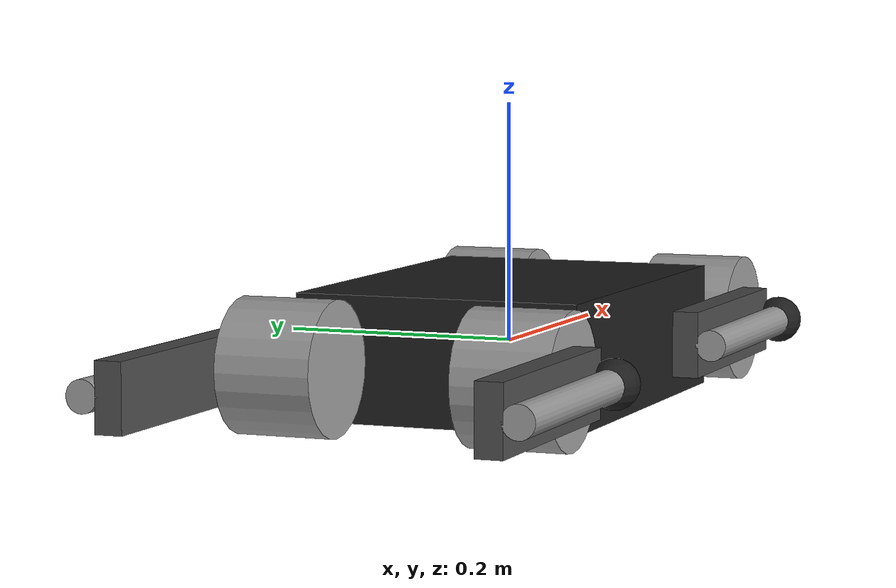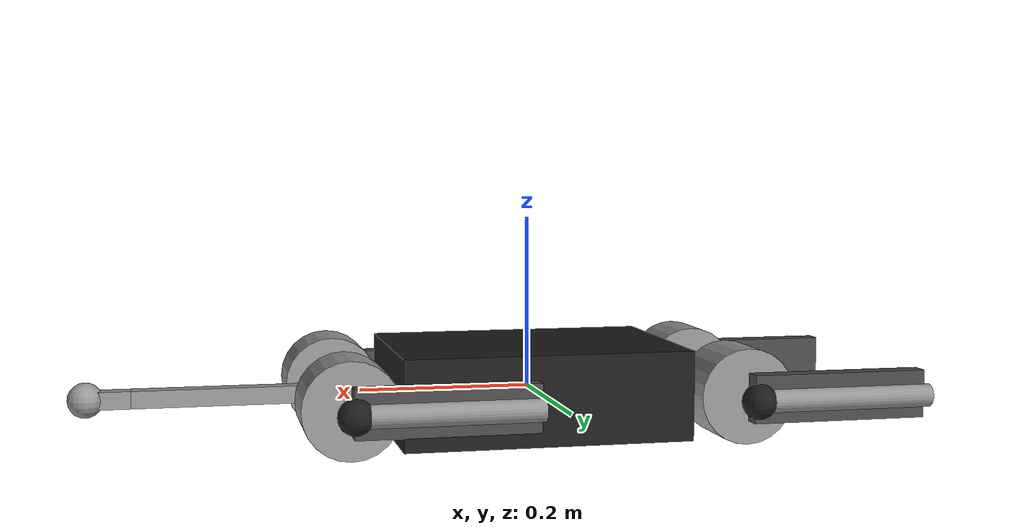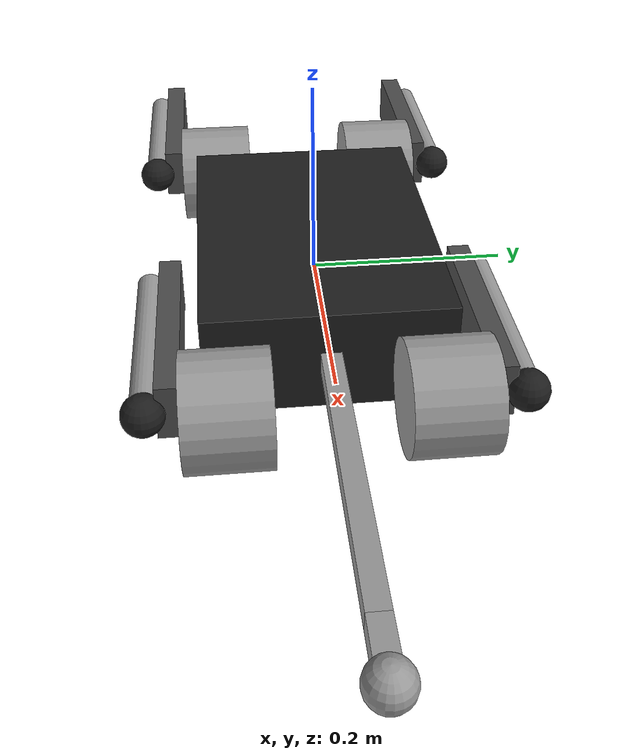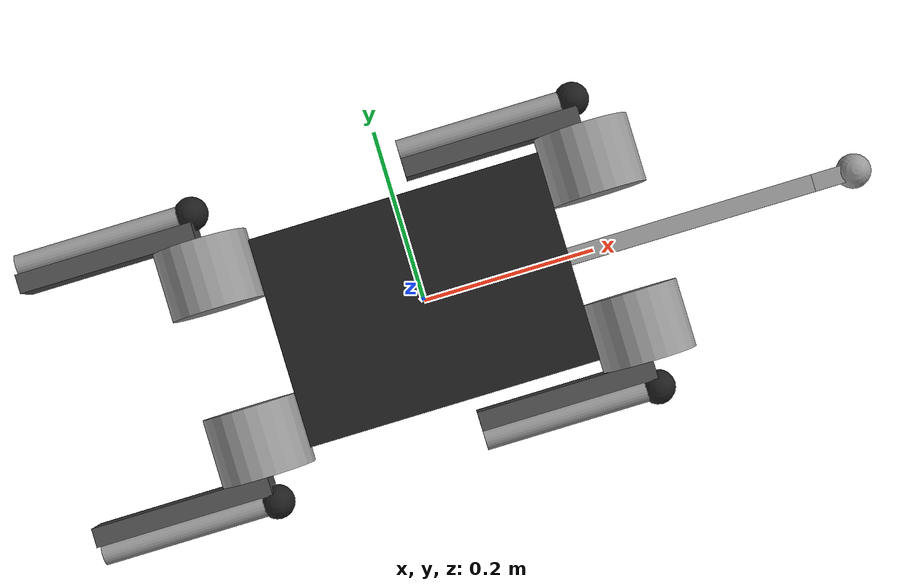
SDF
<?xml version='1.0'?>
<sdf version='1.6'>
  <model name='spirit'>
    <link name='body'>
      <pose frame=''>0 0 0 0 -0 0</pose>
      <inertial>
        <pose frame=''>0 0 0 0 -0 0</pose>
        <mass>5.75</mass>
        <inertia>
          <ixx>0.05</ixx>
          <ixy>0</ixy>
          <ixz>0</ixz>
          <iyy>0.1</iyy>
          <iyz>0</iyz>
          <izz>0.1</izz>
        </inertia>
      </inertial>
      <visual name='body_visual'>
        <pose frame=''>0 0 0 0 -0 0</pose>
        <geometry>
          <box>
            <size>0.335 0.24 0.104</size>
          </box>
        </geometry>
        <material>
          <script>
            <name>Gazebo/Black</name>
            <uri>file://media/materials/scripts/gazebo.material</uri>
          </script>
        </material>
      </visual>
      <gravity>1</gravity>
      <velocity_decay/>
      <self_collide>0</self_collide>
      <enable_wind>0</enable_wind>
      <kinematic>0</kinematic>
    </link>
    <link name='hip2'>
      <pose frame=''>0.2263 -0.07 0 0 -0 0</pose>
      <inertial>
        <pose frame=''>0 -0.028 0 1.5708 -0 0</pose>
        <mass>0.575</mass>
        <inertia>
          <ixx>0.000669635</ixx>
          <ixy>0</ixy>
          <ixz>0</ixz>
          <iyy>0.000669635</iyy>
          <iyz>0</iyz>
          <izz>0.000869688</izz>
        </inertia>
      </inertial>
      <visual name='hip2_visual'>
        <pose frame=''>0 -0.028 0 1.5708 -0 0</pose>
        <geometry>
          <cylinder>
            <length>0.08</length>
            <radius>0.055</radius>
          </cylinder>
        </geometry>
        <material>
          <script>
            <name>Gazebo/Grey</name>
            <uri>file://media/materials/scripts/gazebo.material</uri>
          </script>
        </material>
      </visual>
      <gravity>1</gravity>
      <velocity_decay/>
    </link>
    <joint name='10' type='revolute'>
      <child>hip2</child>
      <parent>body</parent>
      <axis>
        <xyz>1 0 0</xyz>
        <limit>
          <lower>-0.707</lower>
          <upper>0.707</upper>
          <effort>40</effort>
          <velocity>30</velocity>
        </limit>
        <dynamics>
          <damping>0</damping>
          <friction>0</friction>
          <spring_reference>0</spring_reference>
          <spring_stiffness>0</spring_stiffness>
        </dynamics>
        <use_parent_model_frame>0</use_parent_model_frame>
      </axis>
    </joint>
    <link name='upper2'>
      <pose frame=''>0.2263 -0.17098 0 0 -0 0</pose>
      <inertial>
        <pose frame=''>0 0 0 0 -0 0</pose>
        <mass>0.775</mass>
        <inertia>
          <ixx>5e-05</ixx>
          <ixy>0</ixy>
          <ixz>0</ixz>
          <iyy>0.001</iyy>
          <iyz>0</iyz>
          <izz>0.001</izz>
        </inertia>
      </inertial>
      <visual name='upper2_visual'>
        <pose frame=''>-0.103 0.022 0 0 -0 0</pose>
        <geometry>
          <box>
            <size>0.206 0.022 0.055</size>
          </box>
        </geometry>
        <material>
          <script>
            <name>Gazebo/DarkGrey</name>
            <uri>file://media/materials/scripts/gazebo.material</uri>
          </script>
        </material>
      </visual>
      <gravity>1</gravity>
      <velocity_decay/>
    </link>
    <joint name='4' type='revolute'>
      <child>upper2</child>
      <parent>hip2</parent>
      <axis>
        <xyz>0 -1 0</xyz>
        <limit>
          <lower>-6.28319</lower>
          <upper>6.28319</upper>
          <effort>40</effort>
          <velocity>30</velocity>
        </limit>
        <dynamics>
          <damping>0</damping>
          <friction>0</friction>
          <spring_reference>0</spring_reference>
          <spring_stiffness>0</spring_stiffness>
        </dynamics>
        <use_parent_model_frame>0</use_parent_model_frame>
      </axis>
    </joint>
    <link name='lower2'>
      <pose frame=''>0.0203 -0.17098 0 0 -0 0</pose>
      <inertial>
        <pose frame=''>0 0 0 0 -0 0</pose>
        <mass>0.075</mass>
        <inertia>
          <ixx>5e-06</ixx>
          <ixy>0</ixy>
          <ixz>0</ixz>
          <iyy>0.0001</iyy>
          <iyz>0</iyz>
          <izz>0.0001</izz>
        </inertia>
      </inertial>
      <visual name='lower2_visual'>
        <pose frame=''>0.103 0 0 3.14159 1.57079 3.14159</pose>
        <geometry>
          <cylinder>
            <length>0.206</length>
            <radius>0.013</radius>
          </cylinder>
        </geometry>
        <material>
          <script>
            <name>Gazebo/Grey</name>
            <uri>file://media/materials/scripts/gazebo.material</uri>
          </script>
        </material>
      </visual>
      <gravity>1</gravity>
      <velocity_decay/>
    </link>
    <joint name='5' type='revolute'>
      <child>lower2</child>
      <parent>upper2</parent>
      <axis>
        <xyz>0 1 0</xyz>
        <limit>
          <lower>0</lower>
          <upper>3.14159</upper>
          <effort>40</effort>
          <velocity>30</velocity>
        </limit>
        <dynamics>
          <damping>0</damping>
          <friction>0</friction>
          <spring_reference>0</spring_reference>
          <spring_stiffness>0</spring_stiffness>
        </dynamics>
        <use_parent_model_frame>0</use_parent_model_frame>
      </axis>
    </joint>
    <link name='toe2'>
      <pose frame=''>0.2263 -0.17098 -0 0 -0 0</pose>
      <inertial>
        <pose frame=''>0 0 0 0 -0 0</pose>
        <mass>0.015</mass>
        <inertia>
          <ixx>2.5e-05</ixx>
          <ixy>0</ixy>
          <ixz>0</ixz>
          <iyy>2.5e-05</iyy>
          <iyz>0</iyz>
          <izz>2.5e-05</izz>
        </inertia>
      </inertial>
      <sensor name='toe2_contact' type='contact'>
        <plugin name='toe2_plugin' filename='libgazebo_ros_bumper.so'>
          <alwaysOn>1</alwaysOn>
          <updateRate>500</updateRate>
          <bumperTopicName>gazebo/toe2_contact_state</bumperTopicName>
          <frameName>world</frameName>
          <robotNamespace>/</robotNamespace>
        </plugin>
        <contact>
          <collision>toe2_collision</collision>
          <topic>__default_topic__</topic>
        </contact>
        <update_rate>500</update_rate>
      </sensor>
      <gravity>1</gravity>
      <velocity_decay/>
      <self_collide>0</self_collide>
      <enable_wind>0</enable_wind>
      <kinematic>0</kinematic>
      <visual name='toe2_visual'>
        <pose frame=''>0 0 0 0 -0 0</pose>
        <geometry>
          <sphere>
            <radius>0.02</radius>
          </sphere>
        </geometry>
        <material>
          <script>
            <name>Gazebo/Black</name>
            <uri>file://media/materials/scripts/gazebo.material</uri>
          </script>
          <shader type='pixel'/>
        </material>
        <transparency>0</transparency>
        <cast_shadows>1</cast_shadows>
      </visual>
      <collision name='toe2_collision'>
        <laser_retro>0</laser_retro>
        <max_contacts>10</max_contacts>
        <pose frame=''>0 0 0 0 -0 0</pose>
        <geometry>
          <sphere>
            <radius>0.02</radius>
          </sphere>
        </geometry>
        <surface>
          <friction>
            <ode>
              <mu>0.3</mu>
              <mu2>0.3</mu2>
              <fdir1>0 0 0</fdir1>
              <slip1>0</slip1>
              <slip2>0</slip2>
            </ode>
            <torsional>
              <coefficient>1</coefficient>
              <patch_radius>0</patch_radius>
              <surface_radius>0</surface_radius>
              <use_patch_radius>1</use_patch_radius>
              <ode>
                <slip>0</slip>
              </ode>
            </torsional>
          </friction>
          <bounce>
            <restitution_coefficient>0</restitution_coefficient>
            <threshold>1e+06</threshold>
          </bounce>
          <contact>
            <collide_without_contact>0</collide_without_contact>
            <collide_without_contact_bitmask>1</collide_without_contact_bitmask>
            <collide_bitmask>1</collide_bitmask>
            <ode>
              <soft_cfm>0</soft_cfm>
              <soft_erp>0.2</soft_erp>
              <kp>30000</kp>
              <kd>1000</kd>
              <max_vel>0.01</max_vel>
              <min_depth>0</min_depth>
            </ode>
            <bullet>
              <split_impulse>1</split_impulse>
              <split_impulse_penetration_threshold>-0.01</split_impulse_penetration_threshold>
              <soft_cfm>0</soft_cfm>
              <soft_erp>0.2</soft_erp>
              <kp>30000</kp>
              <kd>1000</kd>
            </bullet>
          </contact>
        </surface>
      </collision>
    </link>
    <link name='hip3'>
      <pose frame=''>-0.2263 -0.07 0 0 -0 0</pose>
      <inertial>
        <pose frame=''>0 -0.028 0 1.5708 -0 0</pose>
        <mass>0.575</mass>
        <inertia>
          <ixx>0.000669635</ixx>
          <ixy>0</ixy>
          <ixz>0</ixz>
          <iyy>0.000669635</iyy>
          <iyz>0</iyz>
          <izz>0.000869688</izz>
        </inertia>
      </inertial>
      <visual name='hip3_visual'>
        <pose frame=''>0 -0.028 0 1.5708 -0 0</pose>
        <geometry>
          <cylinder>
            <length>0.08</length>
            <radius>0.055</radius>
          </cylinder>
        </geometry>
        <material>
          <script>
            <name>Gazebo/Grey</name>
            <uri>file://media/materials/scripts/gazebo.material</uri>
          </script>
        </material>
      </visual>
      <gravity>1</gravity>
      <velocity_decay/>
    </link>
    <joint name='11' type='revolute'>
      <child>hip3</child>
      <parent>body</parent>
      <axis>
        <xyz>1 0 0</xyz>
        <limit>
          <lower>-0.707</lower>
          <upper>0.707</upper>
          <effort>40</effort>
          <velocity>30</velocity>
        </limit>
        <dynamics>
          <damping>0</damping>
          <friction>0</friction>
          <spring_reference>0</spring_reference>
          <spring_stiffness>0</spring_stiffness>
        </dynamics>
        <use_parent_model_frame>0</use_parent_model_frame>
      </axis>
    </joint>
    <link name='upper3'>
      <pose frame=''>-0.2263 -0.17098 0 0 -0 0</pose>
      <inertial>
        <pose frame=''>0 0 0 0 -0 0</pose>
        <mass>0.775</mass>
        <inertia>
          <ixx>5e-05</ixx>
          <ixy>0</ixy>
          <ixz>0</ixz>
          <iyy>0.001</iyy>
          <iyz>0</iyz>
          <izz>0.001</izz>
        </inertia>
      </inertial>
      <visual name='upper3_visual'>
        <pose frame=''>-0.103 0.022 0 0 -0 0</pose>
        <geometry>
          <box>
            <size>0.206 0.022 0.055</size>
          </box>
        </geometry>
        <material>
          <script>
            <name>Gazebo/DarkGrey</name>
            <uri>file://media/materials/scripts/gazebo.material</uri>
          </script>
        </material>
      </visual>
      <gravity>1</gravity>
      <velocity_decay/>
    </link>
    <joint name='6' type='revolute'>
      <child>upper3</child>
      <parent>hip3</parent>
      <axis>
        <xyz>0 -1 0</xyz>
        <limit>
          <lower>-6.28319</lower>
          <upper>6.28319</upper>
          <effort>40</effort>
          <velocity>30</velocity>
        </limit>
        <dynamics>
          <damping>0</damping>
          <friction>0</friction>
          <spring_reference>0</spring_reference>
          <spring_stiffness>0</spring_stiffness>
        </dynamics>
        <use_parent_model_frame>0</use_parent_model_frame>
      </axis>
    </joint>
    <link name='lower3'>
      <pose frame=''>-0.4323 -0.17098 0 0 -0 0</pose>
      <inertial>
        <pose frame=''>0 0 0 0 -0 0</pose>
        <mass>0.075</mass>
        <inertia>
          <ixx>5e-06</ixx>
          <ixy>0</ixy>
          <ixz>0</ixz>
          <iyy>0.0001</iyy>
          <iyz>0</iyz>
          <izz>0.0001</izz>
        </inertia>
      </inertial>
      <visual name='lower3_visual'>
        <pose frame=''>0.103 0 0 3.14159 1.57079 3.14159</pose>
        <geometry>
          <cylinder>
            <length>0.206</length>
            <radius>0.013</radius>
          </cylinder>
        </geometry>
        <material>
          <script>
            <name>Gazebo/Grey</name>
            <uri>file://media/materials/scripts/gazebo.material</uri>
          </script>
        </material>
      </visual>
      <gravity>1</gravity>
      <velocity_decay/>
    </link>
    <joint name='7' type='revolute'>
      <child>lower3</child>
      <parent>upper3</parent>
      <axis>
        <xyz>0 1 0</xyz>
        <limit>
          <lower>0</lower>
          <upper>3.14159</upper>
          <effort>40</effort>
          <velocity>30</velocity>
        </limit>
        <dynamics>
          <damping>0</damping>
          <friction>0</friction>
          <spring_reference>0</spring_reference>
          <spring_stiffness>0</spring_stiffness>
        </dynamics>
        <use_parent_model_frame>0</use_parent_model_frame>
      </axis>
    </joint>
    <link name='toe3'>
      <pose frame=''>-0.2263 -0.17098 0 0 -0 0</pose>
      <inertial>
        <pose frame=''>0 0 0 0 -0 0</pose>
        <mass>0.015</mass>
        <inertia>
          <ixx>2.5e-05</ixx>
          <ixy>0</ixy>
          <ixz>0</ixz>
          <iyy>2.5e-05</iyy>
          <iyz>0</iyz>
          <izz>2.5e-05</izz>
        </inertia>
      </inertial>
      <sensor name='toe3_contact' type='contact'>
        <plugin name='toe3_plugin' filename='libgazebo_ros_bumper.so'>
          <alwaysOn>1</alwaysOn>
          <updateRate>500</updateRate>
          <bumperTopicName>gazebo/toe3_contact_state</bumperTopicName>
          <frameName>world</frameName>
          <robotNamespace>/</robotNamespace>
        </plugin>
        <contact>
          <collision>toe3_collision</collision>
          <topic>__default_topic__</topic>
        </contact>
        <update_rate>500</update_rate>
      </sensor>
      <gravity>1</gravity>
      <velocity_decay/>
      <self_collide>0</self_collide>
      <enable_wind>0</enable_wind>
      <kinematic>0</kinematic>
      <visual name='toe3_visual'>
        <pose frame=''>0 0 0 0 -0 0</pose>
        <geometry>
          <sphere>
            <radius>0.02</radius>
          </sphere>
        </geometry>
        <material>
          <script>
            <name>Gazebo/Black</name>
            <uri>file://media/materials/scripts/gazebo.material</uri>
          </script>
          <shader type='pixel'/>
        </material>
        <transparency>0</transparency>
        <cast_shadows>1</cast_shadows>
      </visual>
      <collision name='toe3_collision'>
        <laser_retro>0</laser_retro>
        <max_contacts>10</max_contacts>
        <pose frame=''>0 0 0 0 -0 0</pose>
        <geometry>
          <sphere>
            <radius>0.02</radius>
          </sphere>
        </geometry>
        <surface>
          <friction>
            <ode>
              <mu>0.3</mu>
              <mu2>0.3</mu2>
              <fdir1>0 0 0</fdir1>
              <slip1>0</slip1>
              <slip2>0</slip2>
            </ode>
            <torsional>
              <coefficient>1</coefficient>
              <patch_radius>0</patch_radius>
              <surface_radius>0</surface_radius>
              <use_patch_radius>1</use_patch_radius>
              <ode>
                <slip>0</slip>
              </ode>
            </torsional>
          </friction>
          <bounce>
            <restitution_coefficient>0</restitution_coefficient>
            <threshold>1e+06</threshold>
          </bounce>
          <contact>
            <collide_without_contact>0</collide_without_contact>
            <collide_without_contact_bitmask>1</collide_without_contact_bitmask>
            <collide_bitmask>1</collide_bitmask>
            <ode>
              <soft_cfm>0</soft_cfm>
              <soft_erp>0.2</soft_erp>
              <kp>30000</kp>
              <kd>1000</kd>
              <max_vel>0.01</max_vel>
              <min_depth>0</min_depth>
            </ode>
            <bullet>
              <split_impulse>1</split_impulse>
              <split_impulse_penetration_threshold>-0.01</split_impulse_penetration_threshold>
              <soft_cfm>0</soft_cfm>
              <soft_erp>0.2</soft_erp>
              <kp>30000</kp>
              <kd>1000</kd>
            </bullet>
          </contact>
        </surface>
      </collision>
    </link>
    <link name='hip0'>
      <pose frame=''>0.2263 0.07 0 0 -0 0</pose>
      <inertial>
        <pose frame=''>0 0.028 0 1.5708 -0 0</pose>
        <mass>0.575</mass>
        <inertia>
          <ixx>0.000669635</ixx>
          <ixy>0</ixy>
          <ixz>0</ixz>
          <iyy>0.000669635</iyy>
          <iyz>0</iyz>
          <izz>0.000869688</izz>
        </inertia>
      </inertial>
      <visual name='hip0_visual'>
        <pose frame=''>0 0.028 0 1.5708 -0 0</pose>
        <geometry>
          <cylinder>
            <length>0.08</length>
            <radius>0.055</radius>
          </cylinder>
        </geometry>
        <material>
          <script>
            <name>Gazebo/Grey</name>
            <uri>file://media/materials/scripts/gazebo.material</uri>
          </script>
        </material>
      </visual>
      <gravity>1</gravity>
      <velocity_decay/>
    </link>
    <joint name='8' type='revolute'>
      <child>hip0</child>
      <parent>body</parent>
      <axis>
        <xyz>1 0 0</xyz>
        <limit>
          <lower>-0.707</lower>
          <upper>0.707</upper>
          <effort>40</effort>
          <velocity>30</velocity>
        </limit>
        <dynamics>
          <damping>0</damping>
          <friction>0</friction>
          <spring_reference>0</spring_reference>
          <spring_stiffness>0</spring_stiffness>
        </dynamics>
        <use_parent_model_frame>0</use_parent_model_frame>
      </axis>
    </joint>
    <link name='upper0'>
      <pose frame=''>0.2263 0.17098 0 0 -0 0</pose>
      <inertial>
        <pose frame=''>0 0 0 0 -0 0</pose>
        <mass>0.775</mass>
        <inertia>
          <ixx>5e-05</ixx>
          <ixy>0</ixy>
          <ixz>0</ixz>
          <iyy>0.001</iyy>
          <iyz>0</iyz>
          <izz>0.001</izz>
        </inertia>
      </inertial>
      <visual name='upper0_visual'>
        <pose frame=''>-0.103 -0.022 0 0 -0 0</pose>
        <geometry>
          <box>
            <size>0.206 0.022 0.055</size>
          </box>
        </geometry>
        <material>
          <script>
            <name>Gazebo/DarkGrey</name>
            <uri>file://media/materials/scripts/gazebo.material</uri>
          </script>
        </material>
      </visual>
      <gravity>1</gravity>
      <velocity_decay/>
    </link>
    <joint name='0' type='revolute'>
      <child>upper0</child>
      <parent>hip0</parent>
      <axis>
        <xyz>0 -1 0</xyz>
        <limit>
          <lower>-6.28319</lower>
          <upper>6.28319</upper>
          <effort>40</effort>
          <velocity>30</velocity>
        </limit>
        <dynamics>
          <damping>0</damping>
          <friction>0</friction>
          <spring_reference>0</spring_reference>
          <spring_stiffness>0</spring_stiffness>
        </dynamics>
        <use_parent_model_frame>0</use_parent_model_frame>
      </axis>
    </joint>
    <link name='lower0'>
      <pose frame=''>0.0203 0.17098 0 0 -0 0</pose>
      <inertial>
        <pose frame=''>0 0 0 0 -0 0</pose>
        <mass>0.075</mass>
        <inertia>
          <ixx>5e-06</ixx>
          <ixy>0</ixy>
          <ixz>0</ixz>
          <iyy>0.0001</iyy>
          <iyz>0</iyz>
          <izz>0.0001</izz>
        </inertia>
      </inertial>
      <visual name='lower0_visual'>
        <pose frame=''>0.103 0 0 3.14159 1.57079 3.14159</pose>
        <geometry>
          <cylinder>
            <length>0.206</length>
            <radius>0.013</radius>
          </cylinder>
        </geometry>
        <material>
          <script>
            <name>Gazebo/Grey</name>
            <uri>file://media/materials/scripts/gazebo.material</uri>
          </script>
        </material>
      </visual>
      <gravity>1</gravity>
      <velocity_decay/>
    </link>
    <joint name='1' type='revolute'>
      <child>lower0</child>
      <parent>upper0</parent>
      <axis>
        <xyz>0 1 0</xyz>
        <limit>
          <lower>0</lower>
          <upper>3.14159</upper>
          <effort>40</effort>
          <velocity>30</velocity>
        </limit>
        <dynamics>
          <damping>0</damping>
          <friction>0</friction>
          <spring_reference>0</spring_reference>
          <spring_stiffness>0</spring_stiffness>
        </dynamics>
        <use_parent_model_frame>0</use_parent_model_frame>
      </axis>
    </joint>
    <link name='toe0'>
      <pose frame=''>0.2263 0.17098 0 0 -0 0</pose>
      <inertial>
        <pose frame=''>0 0 0 0 -0 0</pose>
        <mass>0.015</mass>
        <inertia>
          <ixx>2.5e-05</ixx>
          <ixy>0</ixy>
          <ixz>0</ixz>
          <iyy>2.5e-05</iyy>
          <iyz>0</iyz>
          <izz>2.5e-05</izz>
        </inertia>
      </inertial>
      <sensor name='toe0_contact' type='contact'>
        <plugin name='toe0_plugin' filename='libgazebo_ros_bumper.so'>
          <alwaysOn></alwaysOn>
          <updateRate>500</updateRate>
          <bumperTopicName>gazebo/toe0_contact_state</bumperTopicName>
          <frameName>world</frameName>
          <robotNamespace>/</robotNamespace>
        </plugin>
        <contact>
          <collision>toe0_collision</collision>
          <topic>__default_topic__</topic>
        </contact>
        <update_rate>500</update_rate>
      </sensor>
      <collision name='toe0_collision'>
        <pose frame=''>0 0 0 0 -0 0</pose>
        <geometry>
          <sphere>
            <radius>0.02</radius>
          </sphere>
        </geometry>
        <surface>
          <bounce>
            <restitution_coefficient>0</restitution_coefficient>
            <threshold>1e+06</threshold>
          </bounce>
          <friction>
            <torsional>
              <coefficient>0.3</coefficient>
            </torsional>
            <ode>
              <mu>100</mu>
              <mu2>50</mu2>
            </ode>
            <bullet>
              <rolling_friction>0.3</rolling_friction>
              <friction2>50</friction2>
            </bullet>
          </friction>
          <contact>
            <bullet>
              <kp>30000</kp>
              <kd>1000</kd>
              <split_impulse>1</split_impulse>
              <split_impulse_penetration_threshold>-0.01</split_impulse_penetration_threshold>
            </bullet>
            <ode>
              <kp>30000</kp>
              <kd>1000</kd>
            </ode>
          </contact>
        </surface>
      </collision>
      <visual name='toe0_visual'>
        <pose frame=''>0 0 0 0 -0 0</pose>
        <geometry>
          <sphere>
            <radius>0.02</radius>
          </sphere>
        </geometry>
        <material>
          <script>
            <name>Gazebo/Black</name>
            <uri>file://media/materials/scripts/gazebo.material</uri>
          </script>
        </material>
      </visual>
      <gravity>1</gravity>
      <velocity_decay/>
      <self_collide>0</self_collide>
      <enable_wind>0</enable_wind>
      <kinematic>0</kinematic>
    </link>
    <link name='hip1'>
      <pose frame=''>-0.2263 0.07 0 0 -0 0</pose>
      <inertial>
        <pose frame=''>0 0.028 0 1.5708 -0 0</pose>
        <mass>0.575</mass>
        <inertia>
          <ixx>0.000669635</ixx>
          <ixy>0</ixy>
          <ixz>0</ixz>
          <iyy>0.000669635</iyy>
          <iyz>0</iyz>
          <izz>0.000869688</izz>
        </inertia>
      </inertial>
      <visual name='hip1_visual'>
        <pose frame=''>0 0.028 0 1.5708 -0 0</pose>
        <geometry>
          <cylinder>
            <length>0.08</length>
            <radius>0.055</radius>
          </cylinder>
        </geometry>
        <material>
          <script>
            <name>Gazebo/Grey</name>
            <uri>file://media/materials/scripts/gazebo.material</uri>
          </script>
        </material>
      </visual>
      <gravity>1</gravity>
      <velocity_decay/>
    </link>
    <joint name='9' type='revolute'>
      <child>hip1</child>
      <parent>body</parent>
      <axis>
        <xyz>1 0 0</xyz>
        <limit>
          <lower>-0.707</lower>
          <upper>0.707</upper>
          <effort>40</effort>
          <velocity>30</velocity>
        </limit>
        <dynamics>
          <damping>0</damping>
          <friction>0</friction>
          <spring_reference>0</spring_reference>
          <spring_stiffness>0</spring_stiffness>
        </dynamics>
        <use_parent_model_frame>0</use_parent_model_frame>
      </axis>
    </joint>
    <link name='upper1'>
      <pose frame=''>-0.2263 0.17098 0 0 -0 0</pose>
      <inertial>
        <pose frame=''>0 0 0 0 -0 0</pose>
        <mass>0.775</mass>
        <inertia>
          <ixx>5e-05</ixx>
          <ixy>0</ixy>
          <ixz>0</ixz>
          <iyy>0.001</iyy>
          <iyz>0</iyz>
          <izz>0.001</izz>
        </inertia>
      </inertial>
      <visual name='upper1_visual'>
        <pose frame=''>-0.103 -0.022 0 0 -0 0</pose>
        <geometry>
          <box>
            <size>0.206 0.022 0.055</size>
          </box>
        </geometry>
        <material>
          <script>
            <name>Gazebo/DarkGrey</name>
            <uri>file://media/materials/scripts/gazebo.material</uri>
          </script>
        </material>
      </visual>
      <gravity>1</gravity>
      <velocity_decay/>
    </link>
    <joint name='2' type='revolute'>
      <child>upper1</child>
      <parent>hip1</parent>
      <axis>
        <xyz>0 -1 0</xyz>
        <limit>
          <lower>-6.28319</lower>
          <upper>6.28319</upper>
          <effort>40</effort>
          <velocity>30</velocity>
        </limit>
        <dynamics>
          <damping>0</damping>
          <friction>0</friction>
          <spring_reference>0</spring_reference>
          <spring_stiffness>0</spring_stiffness>
        </dynamics>
        <use_parent_model_frame>0</use_parent_model_frame>
      </axis>
    </joint>
    <link name='lower1'>
      <pose frame=''>-0.4323 0.17098 0 0 -0 0</pose>
      <inertial>
        <pose frame=''>0 0 0 0 -0 0</pose>
        <mass>0.075</mass>
        <inertia>
          <ixx>5e-06</ixx>
          <ixy>0</ixy>
          <ixz>0</ixz>
          <iyy>0.0001</iyy>
          <iyz>0</iyz>
          <izz>0.0001</izz>
        </inertia>
      </inertial>
      <visual name='lower1_visual'>
        <pose frame=''>0.103 0 0 3.14159 1.57079 3.14159</pose>
        <geometry>
          <cylinder>
            <length>0.206</length>
            <radius>0.013</radius>
          </cylinder>
        </geometry>
        <material>
          <script>
            <name>Gazebo/Grey</name>
            <uri>file://media/materials/scripts/gazebo.material</uri>
          </script>
        </material>
      </visual>
      <gravity>1</gravity>
      <velocity_decay/>
    </link>
    <joint name='3' type='revolute'>
      <child>lower1</child>
      <parent>upper1</parent>
      <axis>
        <xyz>0 1 0</xyz>
        <limit>
          <lower>0</lower>
          <upper>3.14159</upper>
          <effort>40</effort>
          <velocity>30</velocity>
        </limit>
        <dynamics>
          <damping>0</damping>
          <friction>0</friction>
          <spring_reference>0</spring_reference>
          <spring_stiffness>0</spring_stiffness>
        </dynamics>
        <use_parent_model_frame>0</use_parent_model_frame>
      </axis>
    </joint>
    <link name='toe1'>
      <pose frame=''>-0.2263 0.17098 0 0 -0 0</pose>
      <inertial>
        <pose frame=''>0 0 0 0 -0 0</pose>
        <mass>0.015</mass>
        <inertia>
          <ixx>2.5e-05</ixx>
          <ixy>0</ixy>
          <ixz>0</ixz>
          <iyy>2.5e-05</iyy>
          <iyz>0</iyz>
          <izz>2.5e-05</izz>
        </inertia>
      </inertial>
      <sensor name='toe1_contact' type='contact'>
        <plugin name='toe1_plugin' filename='libgazebo_ros_bumper.so'>
          <alwaysOn>1</alwaysOn>
          <updateRate>500</updateRate>
          <bumperTopicName>gazebo/toe1_contact_state</bumperTopicName>
          <frameName>world</frameName>
          <robotNamespace>/</robotNamespace>
        </plugin>
        <contact>
          <collision>toe1_collision</collision>
          <topic>__default_topic__</topic>
        </contact>
        <update_rate>500</update_rate>
      </sensor>
      <gravity>1</gravity>
      <velocity_decay/>
      <self_collide>0</self_collide>
      <enable_wind>0</enable_wind>
      <kinematic>0</kinematic>
      <visual name='toe1_visual'>
        <pose frame=''>0 0 0 0 -0 0</pose>
        <geometry>
          <sphere>
            <radius>0.02</radius>
          </sphere>
        </geometry>
        <material>
          <script>
            <name>Gazebo/Black</name>
            <uri>file://media/materials/scripts/gazebo.material</uri>
          </script>
          <shader type='pixel'/>
        </material>
        <transparency>0</transparency>
        <cast_shadows>1</cast_shadows>
      </visual>
      <collision name='toe1_collision'>
        <laser_retro>0</laser_retro>
        <max_contacts>10</max_contacts>
        <pose frame=''>0 0 0 0 -0 0</pose>
        <geometry>
          <sphere>
            <radius>0.02</radius>
          </sphere>
        </geometry>
        <surface>
          <friction>
            <ode>
              <mu>0.3</mu>
              <mu2>0.3</mu2>
              <fdir1>0 0 0</fdir1>
              <slip1>0</slip1>
              <slip2>0</slip2>
            </ode>
            <torsional>
              <coefficient>1</coefficient>
              <patch_radius>0</patch_radius>
              <surface_radius>0</surface_radius>
              <use_patch_radius>1</use_patch_radius>
              <ode>
                <slip>0</slip>
              </ode>
            </torsional>
          </friction>
          <bounce>
            <restitution_coefficient>0</restitution_coefficient>
            <threshold>1e+06</threshold>
          </bounce>
          <contact>
            <collide_without_contact>0</collide_without_contact>
            <collide_without_contact_bitmask>1</collide_without_contact_bitmask>
            <collide_bitmask>1</collide_bitmask>
            <ode>
              <soft_cfm>0</soft_cfm>
              <soft_erp>0.2</soft_erp>
              <kp>30000</kp>
              <kd>1000</kd>
              <max_vel>0.01</max_vel>
              <min_depth>0</min_depth>
            </ode>
            <bullet>
              <split_impulse>1</split_impulse>
              <split_impulse_penetration_threshold>-0.01</split_impulse_penetration_threshold>
              <soft_cfm>0</soft_cfm>
              <soft_erp>0.2</soft_erp>
              <kp>30000</kp>
              <kd>1000</kd>
            </bullet>
          </contact>
        </surface>
      </collision>
    </link>
    <link name='tail_link_0'>
      <pose frame=''>0.16 0 0 0 -0 0</pose>
      <inertial>
        <pose frame=''>0.15 0 0 0 -0 0</pose>
        <mass>0.12</mass>
        <inertia>
          <ixx>0.0001</ixx>
          <ixy>0</ixy>
          <ixz>0</ixz>
          <iyy>0.0001</iyy>
          <iyz>0</iyz>
          <izz>0.0001</izz>
        </inertia>
      </inertial>
      <visual name='tail_link_0_visual'>
        <pose frame=''>0.15 0 0 0 -0 0</pose>
        <geometry>
          <box>
            <size>0.3 0.02 0.02</size>
          </box>
        </geometry>
        <material>
          <script>
            <name>Gazebo/Gray</name>
            <uri>file://media/materials/scripts/gazebo.material</uri>
          </script>
        </material>
      </visual>
      <gravity>1</gravity>
      <velocity_decay/>
    </link>
    <joint name='body_tail_joint_0' type='revolute'>
      <child>tail_link_0</child>
      <parent>body</parent>
      <axis>
        <xyz>0 1 0</xyz>
        <limit>
          <lower>-1.57</lower>
          <upper>1.57</upper>
          <effort>35</effort>
          <velocity>1e+06</velocity>
        </limit>
        <dynamics>
          <damping>0</damping>
          <friction>0</friction>
          <spring_reference>0</spring_reference>
          <spring_stiffness>0</spring_stiffness>
        </dynamics>
        <use_parent_model_frame>0</use_parent_model_frame>
      </axis>
    </joint>
    <link name='tail_link_1'>
      <pose frame=''>0.46 0 0 0 -0 0</pose>
      <inertial>
        <pose frame=''>0.025 0 0 0 -0 0</pose>
        <mass>0.0002</mass>
        <inertia>
          <ixx>0.0001</ixx>
          <ixy>0</ixy>
          <ixz>0</ixz>
          <iyy>0.0001</iyy>
          <iyz>0</iyz>
          <izz>0.0001</izz>
        </inertia>
      </inertial>
      <visual name='tail_link_1_visual'>
        <pose frame=''>0.025 0 0 0 -0 0</pose>
        <geometry>
          <box>
            <size>0.05 0.02 0.02</size>
          </box>
        </geometry>
        <material>
          <script>
            <name>Gazebo/Gray</name>
            <uri>file://media/materials/scripts/gazebo.material</uri>
          </script>
        </material>
      </visual>
      <gravity>1</gravity>
      <velocity_decay/>
    </link>
    <joint name='body_tail_joint_1' type='revolute'>
      <child>tail_link_1</child>
      <parent>tail_link_0</parent>
      <axis>
        <xyz>0 1 0</xyz>
        <limit>
          <lower>-1.57</lower>
          <upper>1.57</upper>
          <effort>35</effort>
          <velocity>1e+06</velocity>
        </limit>
        <dynamics>
          <damping>0</damping>
          <friction>0</friction>
          <spring_reference>0</spring_reference>
          <spring_stiffness>0</spring_stiffness>
        </dynamics>
        <use_parent_model_frame>0</use_parent_model_frame>
      </axis>
    </joint>
    <link name='tail_mass'>
      <pose frame=''>0.51 0 0 0 -0 0</pose>
      <inertial>
        <pose frame=''>0 0 0 0 -0 0</pose>
        <mass>0.5</mass>
        <inertia>
          <ixx>0.001</ixx>
          <ixy>0</ixy>
          <ixz>0</ixz>
          <iyy>0</iyy>
          <iyz>0</iyz>
          <izz>0</izz>
        </inertia>
      </inertial>
      <collision name='tail_mass_collision'>
        <pose frame=''>0 0 0 0 -0 0</pose>
        <geometry>
          <sphere>
            <radius>0.02</radius>
          </sphere>
        </geometry>
        <surface>
          <contact>
            <ode/>
          </contact>
          <friction>
            <ode/>
          </friction>
        </surface>
      </collision>
      <visual name='tail_mass_visual'>
        <pose frame=''>0 0 0 0 -0 0</pose>
        <geometry>
          <sphere>
            <radius>0.02</radius>
          </sphere>
        </geometry>
        <material>
          <script>
            <name>Gazebo/Gray</name>
            <uri>file://media/materials/scripts/gazebo.material</uri>
          </script>
        </material>
      </visual>
      <gravity>1</gravity>
      <velocity_decay/>
    </link>
    <joint name='tail_link_mass_joint' type='fixed'>
      <child>tail_mass</child>
      <parent>tail_link_1</parent>
      <axis>
        <dynamics>
          <spring_reference>0</spring_reference>
          <spring_stiffness>0</spring_stiffness>
        </dynamics>
        <xyz>0 0 1</xyz>
        <use_parent_model_frame>0</use_parent_model_frame>
        <limit>
          <lower>-1e+16</lower>
          <upper>1e+16</upper>
        </limit>
      </axis>
      <physics>
        <ode>
          <limit>
            <cfm>0</cfm>
            <erp>0.2</erp>
          </limit>
        </ode>
      </physics>
    </joint>
    <link name='imu::link'>
      <inertial>
        <mass>0.001</mass>
        <inertia>
          <ixx>0</ixx>
          <ixy>0</ixy>
          <ixz>0</ixz>
          <iyy>0</iyy>
          <iyz>0</iyz>
          <izz>0</izz>
        </inertia>
        <pose frame=''>0 0 0 0 -0 0</pose>
      </inertial>
      <sensor name='imu_sensor' type='imu'>
        <always_on>1</always_on>
        <update_rate>100</update_rate>
        <visualize>1</visualize>
        <topic>__default_topic__</topic>
        <plugin name='imu_plugin' filename='libgazebo_ros_imu_sensor.so'>
          <topicName>/mcu/state/imu</topicName>
          <bodyName>imu::link</bodyName>
          <robotNamespace>/</robotNamespace>
          <updateRateHZ>500.0</updateRateHZ>
          <gaussianNoise>0.0</gaussianNoise>
          <xyzOffset>0 0 0</xyzOffset>
          <rpyOffset>0 0 0</rpyOffset>
          <frameName>imu::link</frameName>
          <initialOrientationAsReference>0</initialOrientationAsReference>
        </plugin>
        <pose frame=''>0 0 0 0 -0 0</pose>
        <imu/>
      </sensor>
      <pose frame=''>0 0 0 0 -0 0</pose>
      <self_collide>0</self_collide>
      <enable_wind>0</enable_wind>
      <kinematic>0</kinematic>
      <visual name='visual'>
        <geometry>
          <box>
            <size>0.05 0.05 0.02</size>
          </box>
        </geometry>
        <material>
          <shader type='pixel'/>
        </material>
        <pose frame=''>0 0 0 0 -0 0</pose>
        <transparency>0</transparency>
        <cast_shadows>1</cast_shadows>
      </visual>
    </link>
    <joint name='imu_joint' type='fixed'>
      <parent>body</parent>
      <child>imu::link</child>
      <pose frame=''>0 0 0 0 -0 0</pose>
    </joint>
    <joint name='jtoe0' type='fixed'>
      <parent>lower0</parent>
      <child>toe0</child>
      <pose frame=''>0 0 0 0 -0 0</pose>
      <physics>
        <ode>
          <limit>
            <cfm>0</cfm>
            <erp>0.2</erp>
          </limit>
          <suspension>
            <cfm>0</cfm>
            <erp>0.2</erp>
          </suspension>
        </ode>
      </physics>
    </joint>
    <joint name='jtoe1' type='fixed'>
      <parent>lower1</parent>
      <child>toe1</child>
      <pose frame=''>0 0 0 0 -0 0</pose>
      <physics>
        <ode>
          <limit>
            <cfm>0</cfm>
            <erp>0.2</erp>
          </limit>
          <suspension>
            <cfm>0</cfm>
            <erp>0.2</erp>
          </suspension>
        </ode>
      </physics>
    </joint>
    <joint name='jtoe2' type='fixed'>
      <parent>lower2</parent>
      <child>toe2</child>
      <pose frame=''>0 0 0 0 -0 0</pose>
      <physics>
        <ode>
          <limit>
            <cfm>0</cfm>
            <erp>0.2</erp>
          </limit>
          <suspension>
            <cfm>0</cfm>
            <erp>0.2</erp>
          </suspension>
        </ode>
      </physics>
    </joint>
    <joint name='jtoe3' type='fixed'>
      <parent>lower3</parent>
      <child>toe3</child>
      <pose frame=''>0 0 0 0 -0 0</pose>
      <physics>
        <ode>
          <limit>
            <cfm>0</cfm>
            <erp>0.2</erp>
          </limit>
          <suspension>
            <cfm>0</cfm>
            <erp>0.2</erp>
          </suspension>
        </ode>
      </physics>
    </joint>
    <static>0</static>
    <plugin name='gazebo_ros_control' filename='libgazebo_ros_control.so'>
      <robotNamespace>/spirit</robotNamespace>
      <controlPeriod>0.002</controlPeriod>
    </plugin>
    <plugin name='ground_truth_estimator' filename='libground_truth_estimator.so'>
      <updateRateHZ>500.0</updateRateHZ>
      <robotNamespace>/</robotNamespace>
    </plugin>
  </model>
</sdf>
